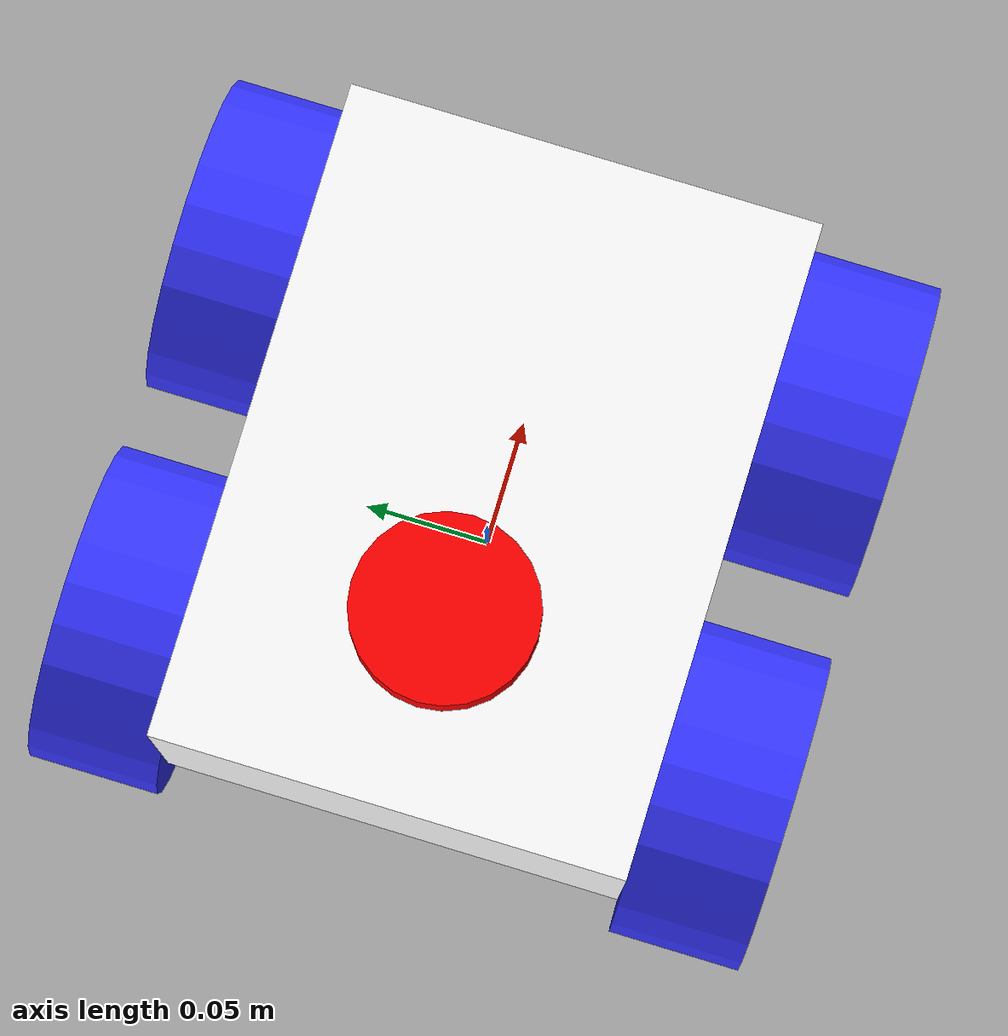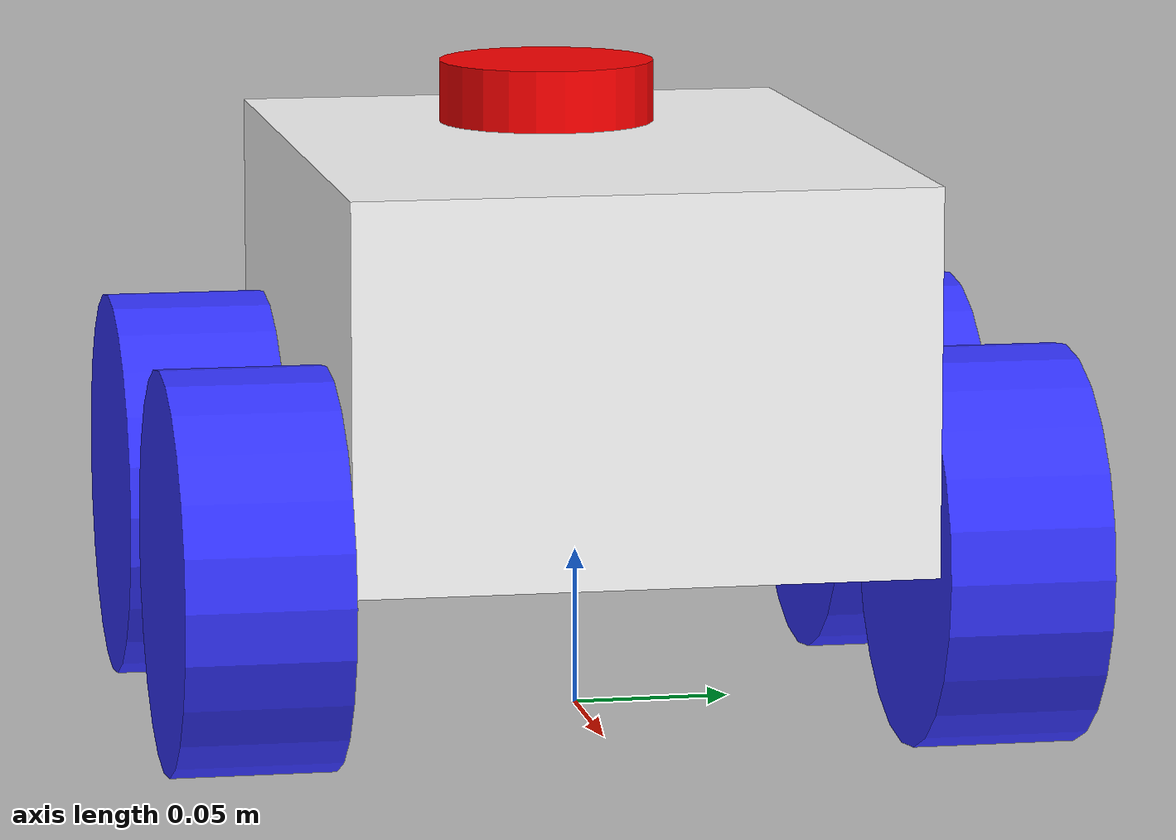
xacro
<?xml version="1.0"?>
<robot xmlns:xacro="http://www.ros.org/wiki/xacro" name="robot">

    <xacro:include filename="robot_core_four_wheel.xacro" />

    <xacro:include filename="lidar2D.xacro" />

</robot>

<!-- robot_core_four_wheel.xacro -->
<robot xmlns:xacro="http://www.ros.org/wiki/xacro">

    <xacro:include filename="inertial_macros.xacro" />

    <material name="white">
        <color rgba="1 1 1 1" />
    </material>

    <material name="orange">
        <color rgba="1 0.3 0.1 1" />
    </material>

    <material name="blue">
        <color rgba="0.2 0.2 1 1" />
    </material>

    <material name="black">
        <color rgba="0 0 0 1" />
    </material>

    <material name="red">
        <color rgba="1 0 0 1" />
    </material>

    <!--BASE
    FOOTPRINT-->
    <link name="base_footprint">
    </link>

    <!--BASE
    LINK-->
    <joint name="base_joint" type="fixed">
        <parent link="base_footprint" />
        <child link="base_link" />
        <origin xyz="0 0 0.0625" />
    </joint>

    <link name="base_link">
        <visual>
            <origin xyz="0 0.0 0.06" />
            <geometry>
                <box size="0.25 0.18 0.12" />
            </geometry>
            <material name="white" />
        </visual>
        <collision>
            <origin xyz="0 0.0 0.06" />
            <geometry>
                <box size="0 0.18 0.12" />
            </geometry>
        </collision>
        <xacro:inertial_box mass="0.5" x="0.3" y="0.3" z="0.15">
            <origin xyz="0 0.0 0.06" rpy="0 0 0" />
        </xacro:inertial_box>
    </link>

    <gazebo reference="base_link">
        <material>Gazebo/Purple</material>
    </gazebo>

    <!--LEFT
    WHEEL BACK LINK-->
    <joint name="left_wheel_back_joint" type="fixed">
        <parent link="base_link" />pe="continuo <child link="left_wheel_back_link" />
        <origin
            xyz="-0.075 0.116 0.0" rpy="-${pi/2} 0.0 0.0" />
        <axis xyz="0.0 0.0 1" />
    </joint>

    <link name="left_wheel_back_link">
        <visual>
            <geometry>
                <cylinder radius="0.0625" length="0.05132" />
            </geometry>
            <material name="blue" />
        </visual>
        <collision>
            <geometry>
               <sphere radius="0.0625" />
            </geometry>
        </collision>
        <xacro:inertial_cylinder mass="0.1" length="0.04" radius="0.05">
            <origin xyz="0 0 0" rpy="0 0 0" />
        </xacro:inertial_cylinder>
    </link>

    <gazebo reference="left_wheel_back_link">
        <material>Gazebo/Blue</material>
    </gazebo>

    <!--RIGHT
    WHEEL BACK LINK-->
    <joint name="right_wheel_back_joint" type="fixed">
        <parent link="base_link" />
        <child link="right_wheel_back_link" />
        <origin xyz="-0.075 -0.116 0.0" rpy="${pi/2} 0.0 0.0" />
        <axis xyz="0.0 0.0 -1" />
    </joint>

    <link name="right_wheel_back_link">
        <visual>
            <geometry>
                <cylinder radius="0.0625" length="0.05132" />
            </geometry>
            <material name="blue" />
        </visual>
        <collision>
            <geometry>
               <sphere radius="0.0625" />
            </geometry>
        </collision>
        <xacro:inertial_cylinder mass="0.1" length="0.04" radius="0.05">
            <origin xyz="0 0 0" rpy="0 0 0" />
        </xacro:inertial_cylinder>
    </link>

    <gazebo reference="right_wheel_back_link">
        <material>Gazebo/Blue</material>

    </gazebo>

    <!--LEFT
    WHEEL FOWARD LINK-->
    <joint name="left_wheel_foward_joint" type="fixed">
        <parent link="base_link" />
        <child link="left_wheel_foward_link" />
        <origin xyz="0.075 0.116 0.0" rpy="-${pi/2} 0.0 0.0" />
        <axis xyz="0.0 0.0 1" />
    </joint>

    <link name="left_wheel_foward_link">
        <visual>
            <geometry>
                <cylinder radius="0.0625" length="0.05132" />
            </geometry>
            <material name="blue" />
        </visual>
        <collision>
            <geometry>
                <sphere radius="0.0625" />
            </geometry>
        </collision>
        <xacro:inertial_cylinder mass="0.1" length="0.04" radius="0.05">
            <origin xyz="0 0 0" rpy="0 0 0" />
        </xacro:inertial_cylinder>
    </link>

    <gazebo reference="left_wheel_foward_link">
        <material>Gazebo/Blue</material>
    </gazebo>

    <!--RIGHT
    WHEEL FOWARD LINK-->
    <joint name="right_wheel_foward_joint" type="fixed">
        <parent link="base_link" />
        <child link="right_wheel_foward_link" />
        <origin xyz="0.075 -0.116 0.0" rpy="${pi/2} 0.0 0.0" />
        <axis xyz="0.0 0.0 -1" />
    </joint>

    <link name="right_wheel_foward_link">
        <visual>
            <geometry>
                <cylinder radius="0.0625" length="0.05132" />
            </geometry>
            <material name="blue" />
        </visual>
        <collision>
            <geometry>
              <sphere radius="0.0625" />
            </geometry>
        </collision>
        <xacro:inertial_cylinder mass="0.1" length="0.04" radius="0.05">
            <origin xyz="0 0 0" rpy="0 0 0" />
        </xacro:inertial_cylinder>
    </link>

    <gazebo reference="right_wheel_foward_link">
        <material>Gazebo/Blue</material>
    </gazebo>

</robot>

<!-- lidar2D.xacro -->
<robot xmlns:xacro="http://www.ros.org/wiki/xacro">

    <joint name="lidar2D_joint" type="fixed">
        <parent link="base_link" />
        <child link="lidar2D_frame" />
        <origin xyz="-0.052 0.0 0.12" rpy="0.0 0.0 0.0" />
    </joint>

    <link name="lidar2D_frame">
        <visual>
            <geometry>
                <cylinder radius="0.035" length="0.04" />
            </geometry>
            <material name="red" />
        </visual>
        <collision>
            <geometry>
                <cylinder radius="0.035" length="0.04" />
            </geometry>
        </collision>
        <xacro:inertial_cylinder mass="0.1" length="0.04" radius="0.05">
            <origin xyz="0 0 0" rpy="0 0 0" />
        </xacro:inertial_cylinder>
    </link>

    <gazebo reference="lidar2D_frame">
        <material>Gazebo/Red</material>

        <sensor name="lidar2D" type="ray">
            <pose> 0 0 0 0 0 0 </pose> <!-- origin sensor is in origin of lidar2D_frame-->
            <visualize>true</visualize> <!-- display sensor in gazebo-->
            <update_rate>10</update_rate> <!-- update data from sensor 10 times/sencond-->
            <ray><!-- paramettor of ray sensor-->
                <scan>
                    <horizontal><!-- scan horizontally-->
                        <samples>360</samples>
                        <resolution>1</resolution>
                        <min_angle>-3.14</min_angle>
                        <max_angle>3.14</max_angle>
                    </horizontal>
                </scan>
                <range>
                    <min>0.3</min>
                    <max>12</max>
                    <resolution>0.01</resolution>
                </range>
            </ray>
            <plugin name="lidar2D_controller" filename="libgazebo_ros_ray_sensor.so">
                <!-- plugin is the thing that gazebo interact with the thing outside gazebo-->
                <ros>
                    <argument>~/out:=scan</argument> <!-- topic scan-->
                </ros>
                <output_type>sensor_msgs/LaserScan</output_type>
                <frame_name>lidar2D_frame</frame_name>
            </plugin>
        </sensor>
    </gazebo>

</robot>
